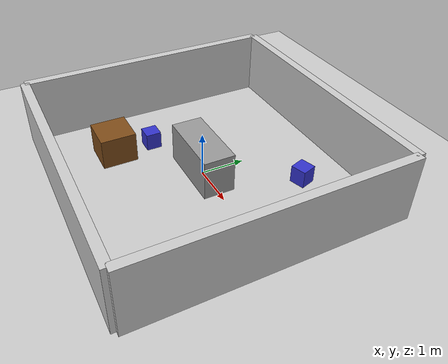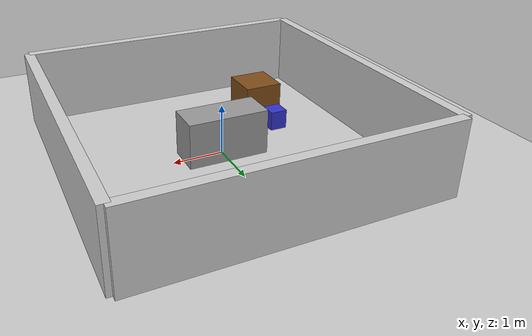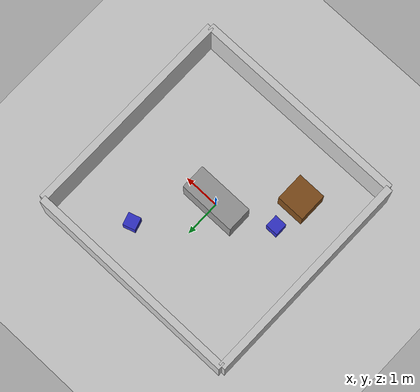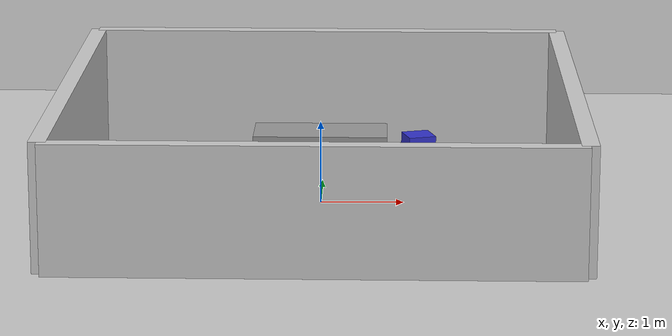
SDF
<?xml version="1.0" ?>
<sdf version="1.8">
  <world name="kitchen">
    <gravity>0 0 -9.81</gravity>

    <physics name="1ms" type="dart">
      <max_step_size>0.001</max_step_size>
      <real_time_factor>1.0</real_time_factor>
      <dart>
        <collision_detector>bullet</collision_detector>
      </dart>
    </physics>

    <plugin
      filename="gz-sim-physics-system"
      name="gz::sim::systems::Physics">
    </plugin>
    <plugin
      filename="gz-sim-sensors-system"
      name="gz::sim::systems::Sensors">
      <render_engine>ogre2</render_engine>
    </plugin>
    <plugin
      filename="gz-sim-contact-system"
      name="gz::sim::systems::Contact">
    </plugin>
    <plugin
      filename="gz-sim-user-commands-system"
      name="gz::sim::systems::UserCommands">
    </plugin>
    <plugin
      filename="gz-sim-scene-broadcaster-system"
      name="gz::sim::systems::SceneBroadcaster">
    </plugin>
    <scene>
      <ambient>0.4 0.4 0.4</ambient>
      <background>0.7 0.7 0.7</background>
    </scene>
    <light type="directional" name="sun">
      <pose>0 0 10 0 0 0</pose>
      <diffuse>0.8 0.8 0.8 1</diffuse>
      <specular>0.2 0.2 0.2 1</specular>
      <direction>-0.5 0.1 -1</direction>
    </light>

    <model name="ground_plane">
      <static>true</static>
      <link name="link">
        <collision name="collision">
          <geometry>
            <plane>
              <normal>0 0 1</normal>
            </plane>
          </geometry>
        </collision>
        <visual name="visual">
          <geometry>
            <plane>
              <normal>0 0 1</normal>
              <size>100 100</size>
            </plane>
          </geometry>
          <material>
            <ambient>0.8 0.8 0.8 1</ambient>
            <diffuse>0.8 0.8 0.8 1</diffuse>
          </material>
        </visual>
      </link>
    </model>

    <model name="wall_back">
      <static>true</static>
      <pose>3.0 0 0.75 0 0 0</pose>
      <link name="link">
        <collision name="collision"><geometry><box><size>0.2 6.0 1.5</size></box></geometry></collision>
        <visual name="visual"><geometry><box><size>0.2 6.0 1.5</size></box></geometry>
          <material><ambient>0.8 0.8 0.8</ambient><diffuse>0.8 0.8 0.8</diffuse></material>
        </visual>
      </link>
    </model>
    <model name="wall_front">
      <static>true</static>
      <pose>-3.0 0 0.75 0 0 0</pose>
      <link name="link">
        <collision name="collision"><geometry><box><size>0.2 6.0 1.5</size></box></geometry></collision>
        <visual name="visual"><geometry><box><size>0.2 6.0 1.5</size></box></geometry>
          <material><ambient>0.8 0.8 0.8</ambient><diffuse>0.8 0.8 0.8</diffuse></material>
        </visual>
      </link>
    </model>
    <model name="wall_left">
      <static>true</static>
      <pose>0 3.0 0.75 0 0 1.5708</pose>
      <link name="link">
        <collision name="collision"><geometry><box><size>0.2 6.0 1.5</size></box></geometry></collision>
        <visual name="visual"><geometry><box><size>0.2 6.0 1.5</size></box></geometry>
          <material><ambient>0.8 0.8 0.8</ambient><diffuse>0.8 0.8 0.8</diffuse></material>
        </visual>
      </link>
    </model>
    <model name="wall_right">
      <static>true</static>
      <pose>0 -3.0 0.75 0 0 1.5708</pose>
      <link name="link">
        <collision name="collision"><geometry><box><size>0.2 6.0 1.5</size></box></geometry></collision>
        <visual name="visual"><geometry><box><size>0.2 6.0 1.5</size></box></geometry>
          <material><ambient>0.8 0.8 0.8</ambient><diffuse>0.8 0.8 0.8</diffuse></material>
        </visual>
      </link>
    </model>

    <model name="kitchen_island">
      <static>true</static>
      <pose>0 0 0.45 0 0 0</pose>
      <link name="link">
        <collision name="collision"><geometry><box><size>1.6 0.7 0.9</size></box></geometry></collision>
        <visual name="visual"><geometry><box><size>1.6 0.7 0.9</size></box></geometry>
          <material><ambient>0.6 0.6 0.6</ambient><diffuse>0.6 0.6 0.6</diffuse></material>
        </visual>
      </link>
    </model>

    <model name="table">
      <static>true</static>
      <pose>-1.5 -1.5 0.35 0 0 0</pose>
      <link name="link">
        <collision name="collision"><geometry><box><size>0.8 0.8 0.7</size></box></geometry></collision>
        <visual name="visual"><geometry><box><size>0.8 0.8 0.7</size></box></geometry>
          <material><ambient>0.5 0.3 0.1</ambient><diffuse>0.5 0.3 0.1</diffuse></material>
        </visual>
      </link>
    </model>

    <model name="chair_1">
      <static>true</static>
      <pose>-1.5 -0.6 0.2 0 0 0</pose>
      <link name="link">
        <collision name="collision"><geometry><box><size>0.35 0.35 0.4</size></box></geometry></collision>
        <visual name="visual"><geometry><box><size>0.35 0.35 0.4</size></box></geometry>
          <material><ambient>0.2 0.2 0.8</ambient><diffuse>0.2 0.2 0.8</diffuse></material>
        </visual>
      </link>
    </model>

    <model name="chair_2">
      <static>true</static>
      <pose>1.2 1.8 0.2 0 0 0.3</pose>
      <link name="link">
        <collision name="collision"><geometry><box><size>0.35 0.35 0.4</size></box></geometry></collision>
        <visual name="visual"><geometry><box><size>0.35 0.35 0.4</size></box></geometry>
          <material><ambient>0.2 0.2 0.8</ambient><diffuse>0.2 0.2 0.8</diffuse></material>
        </visual>
      </link>
    </model>
  </world>
</sdf>
